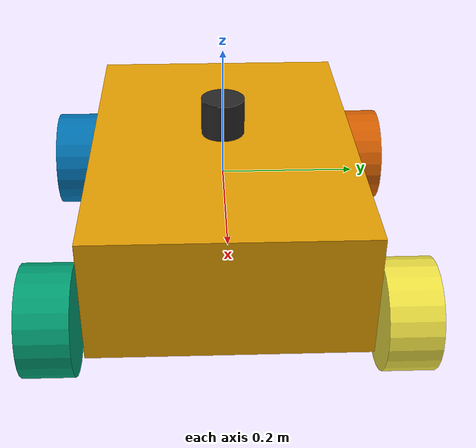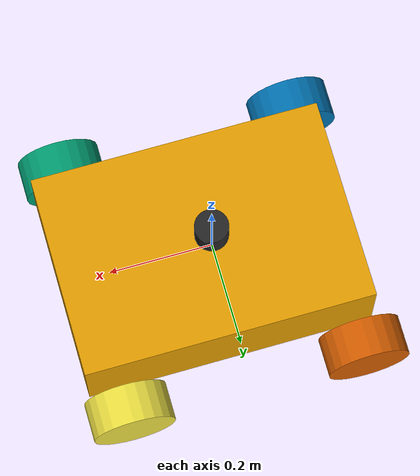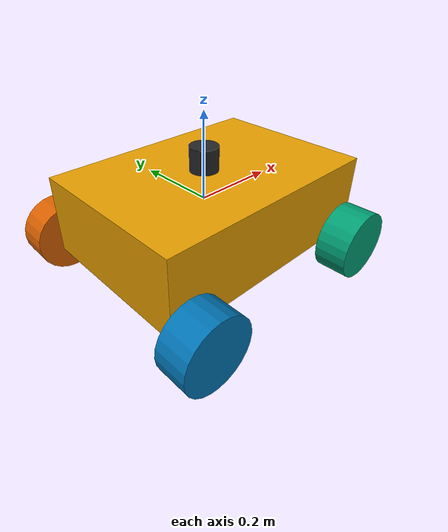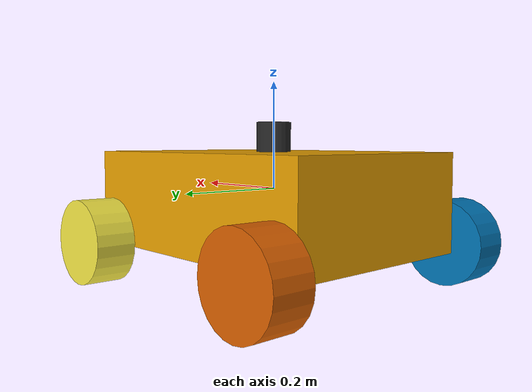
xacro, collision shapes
<?xml version="1.0"?>
<robot name="scout_mini" xmlns:xacro="http://ros.org/wiki/xacro">
  <xacro:arg name="sensor" default="raycast"/>
  <xacro:arg name="geometry_source" default="collision"/>
  <xacro:arg name="pattern_file" default="model://livox_mid360/scan_mode/mid360.csv"/>
  <xacro:arg name="dense_rate" default="50"/>
  <xacro:arg name="dense_h" default="1440"/>
  <xacro:arg name="dense_v" default="160"/>
  <xacro:arg name="range_noise" default="0.02"/>
  <xacro:arg name="mesh_collision" default="false"/>
  <xacro:property name="mesh_collision" value="$(arg mesh_collision)"/>

  <xacro:include filename="$(find livox_mid360_sim)/urdf/livox_mid360.urdf.xacro"/>

  <xacro:property name="mesh_dir" value="package://livox_mid360_sim/models/scout_mini/meshes"/>
  <xacro:property name="deck_z" value="0.057"/>
  <xacro:property name="plate_t" value="0.008"/>

  <!-- Vehicle geometries -->
  <link name="base_link">
    <visual>
      <origin xyz="0 0 0" rpy="1.57 0 -1.57"/>
      <geometry><mesh filename="${mesh_dir}/scout_mini_base_link.dae"/></geometry>
    </visual>
    <xacro:if value="${mesh_collision}">
      <collision>
        <origin xyz="0 0 0" rpy="1.57 0 -1.57"/>
        <geometry><mesh filename="${mesh_dir}/scout_mini_base_link.dae"/></geometry>
      </collision>
    </xacro:if>
    <xacro:unless value="${mesh_collision}">
      <!-- bounding box of the body mesh in base_link -->
      <collision>
        <origin xyz="0.0177 0 -0.0221" rpy="0 0 0"/>
        <geometry><box size="0.5606 0.39 0.1826"/></geometry>
      </collision>
    </xacro:unless>
  </link>

  <link name="inertial_link">
    <inertial>
      <mass value="132.3898489950015"/>
      <origin xyz="0 0 0"/>
      <inertia ixx="0.185196122711036" ixy="4.30144213829512E-08" ixz="5.81037523686401E-08"
               iyy="0.364893736238929" iyz="-0.000386720198091934" izz="0.223868521722778"/>
    </inertial>
  </link>
  <joint name="inertial_joint" type="fixed">
    <origin xyz="0 0 0" rpy="0 0 0"/>
    <parent link="base_link"/>
    <child link="inertial_link"/>
  </joint>

  <xacro:macro name="scout_wheel" params="name xyz roll axis">
    <link name="${name}_link">
      <inertial>
        <mass value="3"/>
        <origin xyz="0 0 0"/>
        <inertia ixx="0.7171" ixy="0" ixz="0" iyy="0.7171" iyz="0" izz="0.1361"/>
      </inertial>
      <visual>
        <origin xyz="0 0 0" rpy="0 0 0"/>
        <geometry><mesh filename="${mesh_dir}/wheel.dae"/></geometry>
      </visual>
      <xacro:if value="${mesh_collision}">
        <collision>
          <origin xyz="0 0 0" rpy="0 0 0"/>
          <geometry><mesh filename="${mesh_dir}/wheel.dae"/></geometry>
        </collision>
      </xacro:if>
      <xacro:unless value="${mesh_collision}">
        <!-- tread of wheel.dae: radius 0.081, local z 0.0025..0.0767 (outward) -->
        <collision>
          <origin xyz="0 0 0.0396" rpy="0 0 0"/>
          <geometry><cylinder radius="0.08" length="0.074"/></geometry>
        </collision>
      </xacro:unless>
    </link>
    <joint name="${name}" type="continuous">
      <origin rpy="${roll} 0 0" xyz="${xyz}"/>
      <parent link="base_link"/>
      <child link="${name}_link"/>
      <axis xyz="0 0 ${axis}" rpy="0 0 0"/>
    </joint>
  </xacro:macro>
  <xacro:scout_wheel name="front_right_wheel" xyz="0.2319755 -0.2082515 -0.099998" roll="1.57" axis="-1"/>
  <xacro:scout_wheel name="front_left_wheel" xyz="0.2319755 0.2082515 -0.100998" roll="-1.57" axis="1"/>
  <xacro:scout_wheel name="rear_right_wheel" xyz="-0.2319755 -0.2082515 -0.099998" roll="1.57" axis="-1"/>
  <xacro:scout_wheel name="rear_left_wheel" xyz="-0.2319755 0.2082515 -0.100998" roll="-1.57" axis="1"/>

  <!-- Mounting plate over the deck recess, Mid-360 centred on it -->
  <link name="livox_mount_plate">
    <inertial>
      <mass value="0.1"/>
      <inertia ixx="1e-4" iyy="1e-4" izz="1e-4" ixy="0" ixz="0" iyz="0"/>
    </inertial>
    <visual>
      <geometry><box size="0.10 0.10 ${plate_t}"/></geometry>
      <material name="plate_grey"><color rgba="0.55 0.55 0.6 1"/></material>
    </visual>
    <collision>
      <geometry><box size="0.10 0.10 ${plate_t}"/></geometry>
    </collision>
  </link>
  <joint name="livox_mount_plate_joint" type="fixed">
    <parent link="base_link"/>
    <child link="livox_mount_plate"/>
    <origin xyz="0 0 ${deck_z + plate_t / 2}"/>
  </joint>

  <xacro:livox_mid360 parent="livox_mount_plate" xyz="0 0 ${plate_t / 2}" rpy="0 0 0"
                      sensor="$(arg sensor)" geometry_source="$(arg geometry_source)"
                      pattern_file="$(arg pattern_file)" dense_rate="$(arg dense_rate)"
                      range_noise="$(arg range_noise)"
                      dense_h_samples="$(arg dense_h)" dense_v_samples="$(arg dense_v)"/>

  <!-- Scout gazebo plugins (as in ignc-kit) -->
  <gazebo>
    <plugin filename="gz-sim-joint-state-publisher-system"
            name="gz::sim::systems::JointStatePublisher">
      <topic>/joint_states</topic>
      <update_rate>50</update_rate>
      <joint_name>front_right_wheel</joint_name>
      <joint_name>front_left_wheel</joint_name>
      <joint_name>rear_right_wheel</joint_name>
      <joint_name>rear_left_wheel</joint_name>
    </plugin>
    <plugin filename="gz-sim-diff-drive-system" name="gz::sim::systems::DiffDrive">
      <left_joint>front_left_wheel</left_joint>
      <right_joint>front_right_wheel</right_joint>
      <left_joint>rear_left_wheel</left_joint>
      <right_joint>rear_right_wheel</right_joint>
      <wheel_separation>0.49</wheel_separation>
      <wheel_radius>0.08</wheel_radius>
      <max_wheel_torque>20</max_wheel_torque>
      <max_linear_acceleration>0.3</max_linear_acceleration>
      <max_angular_acceleration>0.5</max_angular_acceleration>
      <min_linear_acceleration>-0.3</min_linear_acceleration>
      <min_angular_acceleration>-0.5</min_angular_acceleration>
      <topic>/cmd_vel</topic>
    </plugin>
    <plugin filename="gz-sim-odometry-publisher-system"
            name="gz::sim::systems::OdometryPublisher">
      <odom_frame>odom</odom_frame>
      <robot_base_frame>base_link</robot_base_frame>
      <odom_publish_frequency>50</odom_publish_frequency>
      <odom_topic>/odom</odom_topic>
      <tf_topic>/tf</tf_topic>
      <dimensions>2</dimensions>
    </plugin>
    <!-- ground truth: world pose of base_link (bridged to /ground_truth/pose) -->
    <plugin filename="gz-sim-pose-publisher-system" name="gz::sim::systems::PosePublisher">
      <publish_link_pose>false</publish_link_pose>
      <publish_model_pose>true</publish_model_pose>
      <publish_nested_model_pose>false</publish_nested_model_pose>
      <use_pose_vector_msg>false</use_pose_vector_msg>
      <update_frequency>1000</update_frequency>
    </plugin>
  </gazebo>
</robot>

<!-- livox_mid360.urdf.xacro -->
<robot xmlns:xacro="http://www.ros.org/wiki/xacro">
  <xacro:macro name="livox_mid360"
    params="parent xyz:='0 0 0' rpy:='0 0 0'
            sensor:=raycast frame_id:=livox_frame
            points_topic:=/livox/points imu_topic:=/livox/imu_raw dense_topic:=/livox/dense_scan
            point_rate:=200000 frame_rate:=10 imu_rate:=200 dense_rate:=50
            geometry_source:=collision
            dense_h_samples:=1440 dense_v_samples:=160
            pattern_file:=model://livox_mid360/scan_mode/mid360.csv
            range_noise:=0.02 min_range:=0.1 max_range:=70.0 nominal_range:=40.0
            lidar_mode:=sliced slices:=5">

    <link name="${frame_id}_base">
      <inertial>
        <origin xyz="0 0 0.03"/>
        <mass value="0.265"/>
        <inertia ixx="1.73e-4" iyy="1.73e-4" izz="1.40e-4" ixy="0" ixz="0" iyz="0"/>
      </inertial>
      <visual>
        <origin xyz="0 0 0.03"/>
        <geometry><cylinder radius="0.0325" length="0.06"/></geometry>
        <material name="livox_black"><color rgba="0.15 0.15 0.15 1"/></material>
      </visual>
      <collision>
        <origin xyz="0 0 0.03"/>
        <geometry><cylinder radius="0.0325" length="0.06"/></geometry>
      </collision>
    </link>
    <joint name="${frame_id}_mount_joint" type="fixed">
      <parent link="${parent}"/>
      <child link="${frame_id}_base"/>
      <origin xyz="${xyz}" rpy="${rpy}"/>
    </joint>

    <link name="${frame_id}">
      <inertial>
        <mass value="0.001"/>
        <inertia ixx="1e-7" iyy="1e-7" izz="1e-7" ixy="0" ixz="0" iyz="0"/>
      </inertial>
    </link>
    <joint name="${frame_id}_joint" type="fixed">
      <parent link="${frame_id}_base"/>
      <child link="${frame_id}"/>
      <origin xyz="0 0 0.047" rpy="0 0 0"/>
    </joint>
    <!-- keep the optical-centre link through URDF->SDF fixed-joint lumping -->
    <gazebo reference="${frame_id}_joint">
      <preserveFixedJoint>true</preserveFixedJoint>
    </gazebo>

    <gazebo reference="${frame_id}">
      <xacro:if value="${sensor == 'modes'}">
        <sensor name="${frame_id}_dense_lidar" type="gpu_lidar">
          <pose>0 0 0 0 0 0</pose>
          <topic>${dense_topic}</topic>
          <update_rate>${frame_rate * int(slices) if lidar_mode == 'sliced' else (1 if lidar_mode == 'raycast' else frame_rate)}</update_rate>
          <always_on>true</always_on>
          <visualize>false</visualize>
          <lidar>
            <scan>
              <horizontal>
                <samples>${dense_h_samples}</samples>
                <resolution>1</resolution>
                <min_angle>${-pi}</min_angle>
                <max_angle>${pi}</max_angle>
              </horizontal>
              <vertical>
                <samples>${dense_v_samples}</samples>
                <resolution>1</resolution>
                <min_angle>${radians(-7.5)}</min_angle>
                <max_angle>${radians(52.5)}</max_angle>
              </vertical>
            </scan>
            <range>
              <min>${min_range}</min>
              <max>${max_range}</max>
              <resolution>0.002</resolution>
            </range>
            <xacro:if value="${float(range_noise) > 0}">
              <noise>
                <type>gaussian</type>
                <mean>0.0</mean>
                <stddev>${range_noise}</stddev>
              </noise>
            </xacro:if>
          </lidar>
        </sensor>
      </xacro:if>

      <xacro:if value="${sensor == 'gpu'}">
        <sensor name="${frame_id}_dense" type="gpu_lidar">
          <pose>0 0 0 0 0 0</pose>
          <topic>${dense_topic}</topic>
          <update_rate>${dense_rate}</update_rate>
          <always_on>true</always_on>
          <visualize>false</visualize>
          <lidar>
            <scan>
              <horizontal>
                <samples>${dense_h_samples}</samples>
                <resolution>1</resolution>
                <min_angle>${-pi}</min_angle>
                <max_angle>${pi - 2*pi/dense_h_samples}</max_angle>
              </horizontal>
              <vertical>
                <samples>${dense_v_samples}</samples>
                <resolution>1</resolution>
                <min_angle>${radians(-7.5)}</min_angle>
                <max_angle>${radians(52.5)}</max_angle>
              </vertical>
            </scan>
            <range>
              <min>${min_range}</min>
              <max>${max_range}</max>
              <resolution>0.001</resolution>
            </range>
          </lidar>
        </sensor>
      </xacro:if>

      <sensor name="${frame_id}_imu" type="imu">
        <pose>0.011 0.02329 -0.04412 0 0 0</pose>
        <topic>${imu_topic}</topic>
        <update_rate>${imu_rate}</update_rate>
        <always_on>true</always_on>
        <imu>
          <angular_velocity>
            <x><noise type="gaussian"><mean>0</mean><stddev>6.6e-4</stddev></noise></x>
            <y><noise type="gaussian"><mean>0</mean><stddev>6.6e-4</stddev></noise></y>
            <z><noise type="gaussian"><mean>0</mean><stddev>6.6e-4</stddev></noise></z>
          </angular_velocity>
          <linear_acceleration>
            <x><noise type="gaussian"><mean>0</mean><stddev>0.01</stddev></noise></x>
            <y><noise type="gaussian"><mean>0</mean><stddev>0.01</stddev></noise></y>
            <z><noise type="gaussian"><mean>0</mean><stddev>0.01</stddev></noise></z>
          </linear_acceleration>
        </imu>
      </sensor>
    </gazebo>

    <xacro:if value="${sensor == 'modes'}">
      <gazebo>
        <plugin filename="livox_mid360_modes_system"
                name="livox_mid360_sim::modes::LivoxMid360Modes">
          <input_topic>${dense_topic}</input_topic>
          <output_topic>${points_topic}</output_topic>
          <frame_id>${frame_id}</frame_id>
          <frame_rate>${frame_rate}</frame_rate>
          <points_per_second>${point_rate}</points_per_second>
          <min_range>${min_range}</min_range>
          <max_range>${max_range}</max_range>
          <pattern_file>${pattern_file}</pattern_file>
          <mode>${lidar_mode}</mode>
          <slices>${slices}</slices>
          <sensor_name>${frame_id}_dense_lidar</sensor_name>
          <range_noise>${range_noise}</range_noise>
        </plugin>
      </gazebo>
    </xacro:if>

    <xacro:unless value="${sensor == 'modes'}">
    <gazebo>
      <plugin filename="livox_mid360_sim_system"
              name="livox_mid360_sim::${'LivoxMid360Gpu' if sensor == 'gpu' else 'LivoxMid360Raycast'}">
        <frame_id>${frame_id}</frame_id>
        <link_name>${frame_id}</link_name>
        <dense_topic>${dense_topic}</dense_topic>
        <geometry_source>${geometry_source}</geometry_source>
        <points_topic>${points_topic}</points_topic>
        <pattern_file>${pattern_file}</pattern_file>
        <point_rate>${point_rate}</point_rate>
        <frame_rate>${frame_rate}</frame_rate>
        <min_range>${min_range}</min_range>
        <max_range>${max_range}</max_range>
        <nominal_range>${nominal_range}</nominal_range>
        <range_noise_stddev>${range_noise}</range_noise_stddev>
      </plugin>
    </gazebo>
    </xacro:unless>
  </xacro:macro>
</robot>
